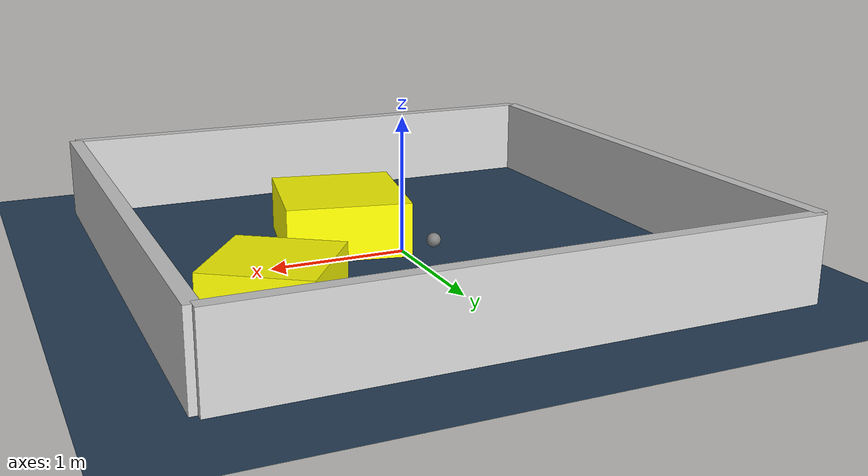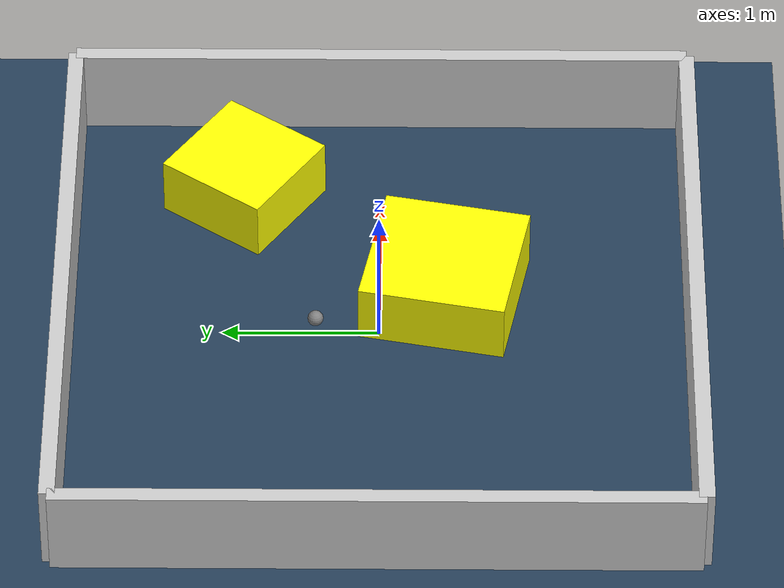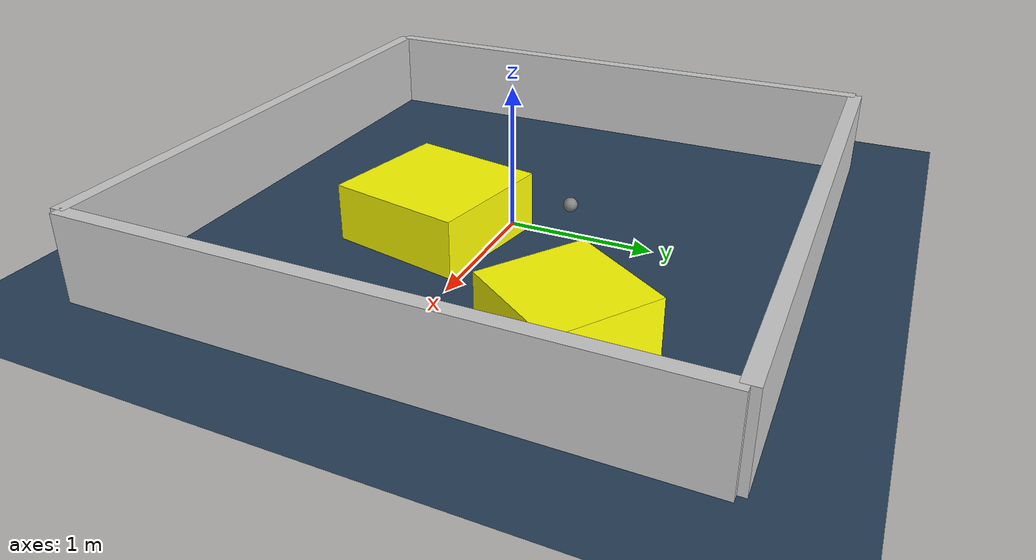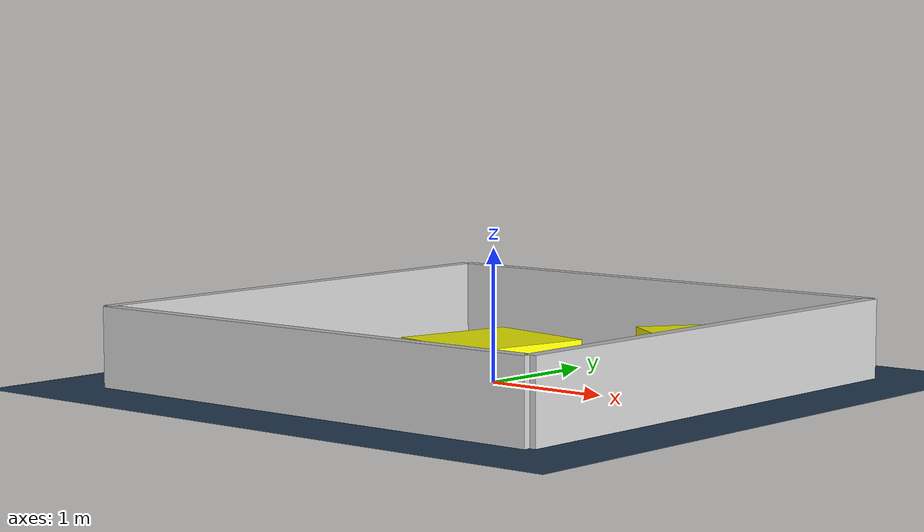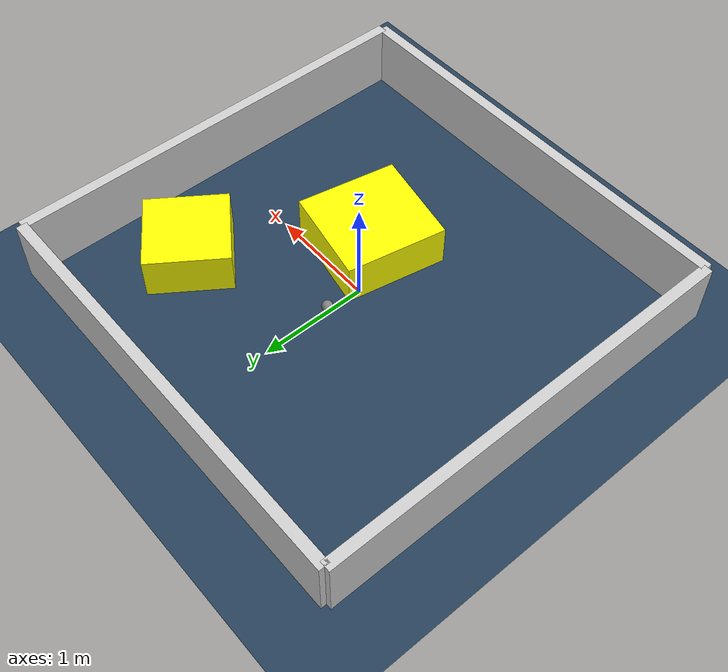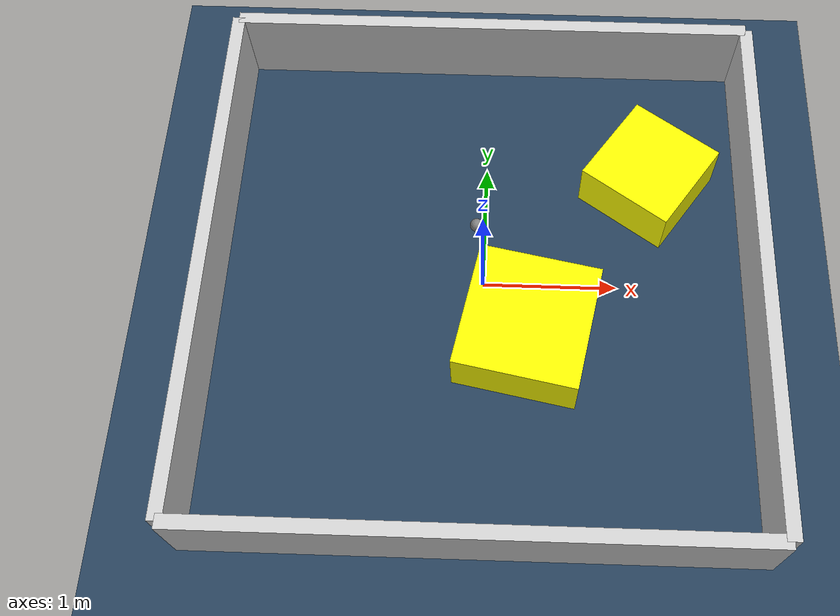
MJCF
<?xml version="1.0" ?>
<mujoco model="generated_environment">
  <option timestep="0.01" integrator="RK4" cone="elliptic"/>
  <default>
    <geom density="1"/>
  </default>
  <asset>
    <texture builtin="gradient" height="3072" rgb1="0.3 0.5 0.7" rgb2="0 0 0" type="skybox" width="512"/>
    <texture builtin="checker" height="300" mark="edge" markrgb="0.8 0.8 0.8" name="groundplane" rgb1="0.2 0.3 0.4" rgb2="0.1 0.2 0.3" type="2d" width="300"/>
    <material name="groundplane" reflectance="0.2" texrepeat="5 5" texture="groundplane" texuniform="true"/>
    <material name="robot" rgba="0.0 1.0 0.0 1"/>
  </asset>
  <worldbody>
    <light dir="0 0 -1" directional="true" pos="0 0 1.5"/>
    <geom condim="4" friction="1.0 0.005 0.001" material="groundplane" name="floor" size="0 0 0.05" type="plane"/>
    <body name="walls">
      <geom name="wall_1" condim="4" pos="-2.0 0.0 0.3" rgba="0.800000011920929 0.800000011920929 0.800000011920929 1.0" size="0.05 2.0 0.3" type="box"/>
      <geom name="wall_2" condim="4" pos="2.0 0.0 0.3" rgba="0.800000011920929 0.800000011920929 0.800000011920929 1.0" size="0.05 2.0 0.3" type="box"/>
      <geom name="wall_3" condim="4" pos="0.0 -2.0 0.3" rgba="0.800000011920929 0.800000011920929 0.800000011920929 1.0" size="2.0 0.05 0.3" type="box"/>
      <geom name="wall_4" condim="4" pos="0.0 2.0 0.3" rgba="0.800000011920929 0.800000011920929 0.800000011920929 1.0" size="2.0 0.05 0.3" type="box"/>
    </body>
    <body name="robot">
      <joint name="joint_x" type="slide" pos="0 0 0" axis="1 0 0"/>
      <joint name="joint_y" type="slide" pos="0 0 0" axis="0 1 0"/>
      <geom name="robot" type="sphere" pos="-0.06418890550652656 0.40260622398601287 0.2" size="0.05" mass="5." friction="1.0 0.005 0.0001" condim="4"/>
      <site name="sensor_ball"/>
    </body>
    <body name="obstacle_1_movable">
      <geom name="obstacle_1_movable" condim="4" pos="1.2441224242951852 0.8838027550978027 0.2" euler="0 0 145.10190914869298" friction="1.0 0.005 0.001" rgba="1 1 0 1" size="0.37353609881813077 0.37860983182653973 0.2" type="box" mass="0.1"/>
      <joint type="free"/>
    </body>
    <body name="obstacle_2_movable">
      <geom name="obstacle_2_movable" condim="4" pos="0.32858337177666863 -0.4163325353681344 0.2" euler="0 0 348.8165649683463" friction="1.0 0.005 0.001" rgba="1 1 0 1" size="0.45290097980199795 0.47105730783071365 0.2" type="box" mass="0.1"/>
      <joint type="free"/>
    </body>
  </worldbody>
  <actuator>
    <motor name="actuator_x" joint="joint_x" gear="1" ctrlrange="-1 1"/>
    <motor name="actuator_y" joint="joint_y" gear="1" ctrlrange="-1 1"/>
  </actuator>
</mujoco>
